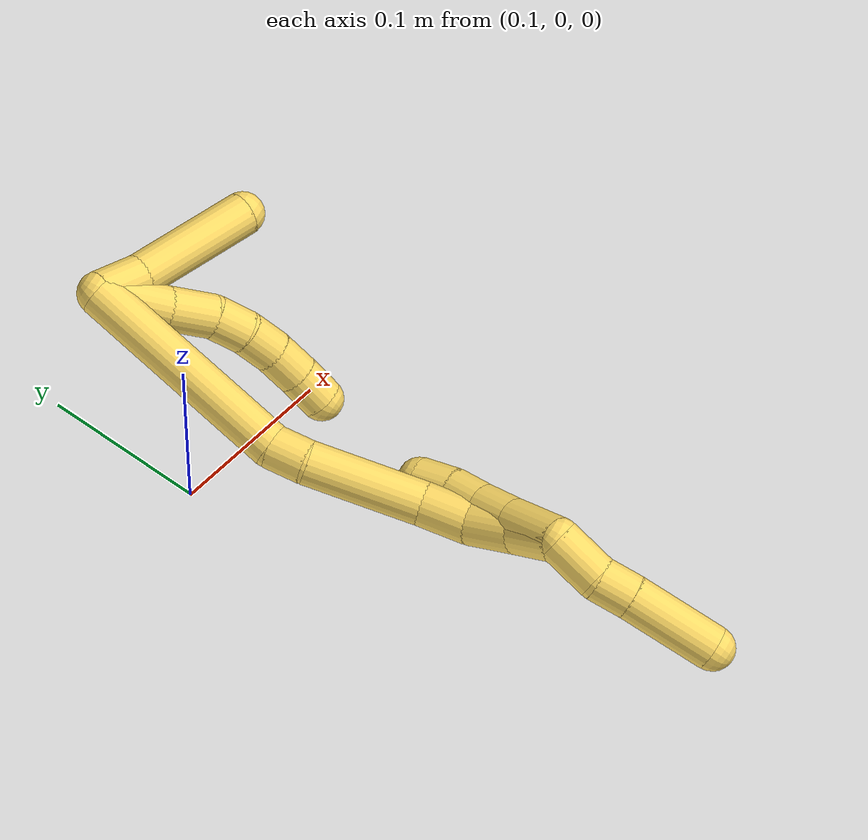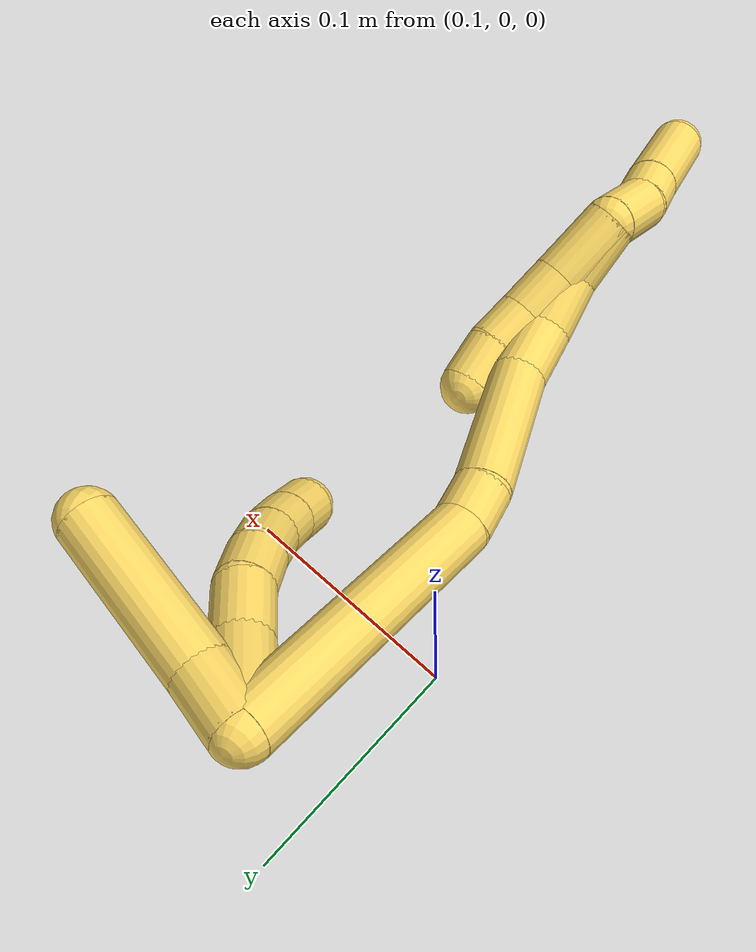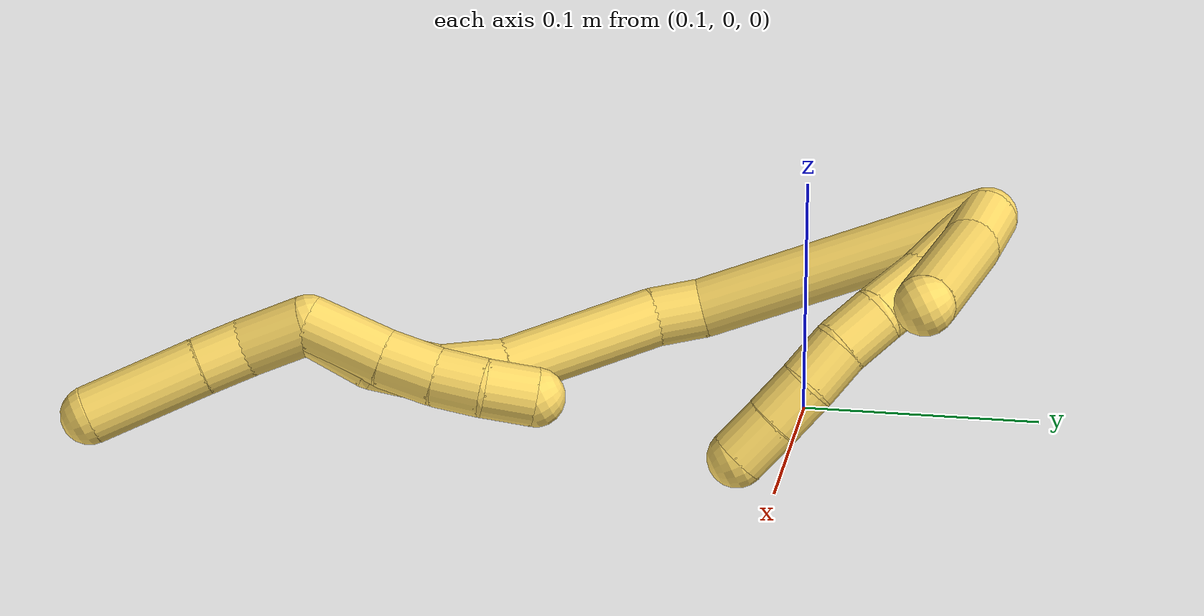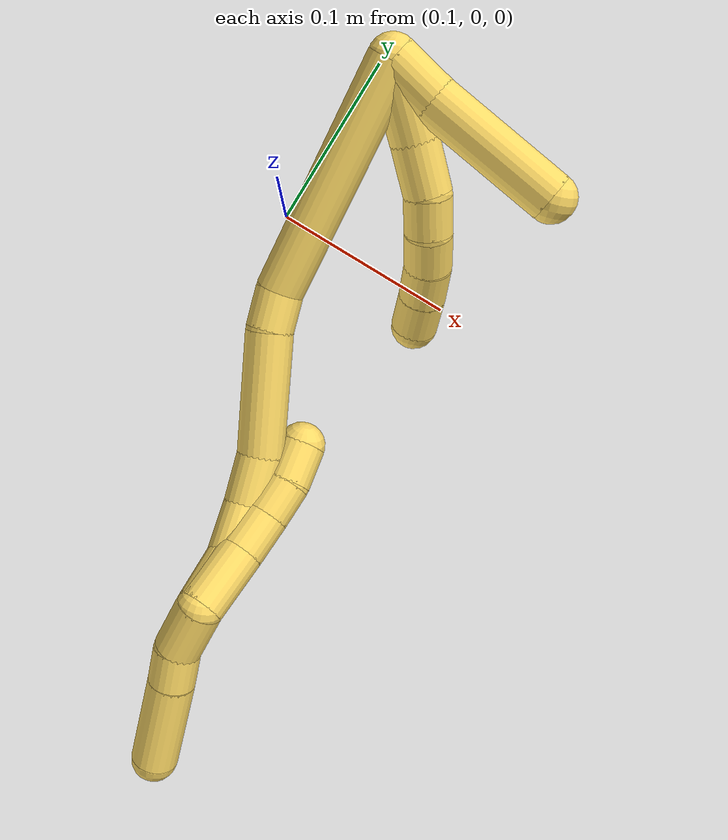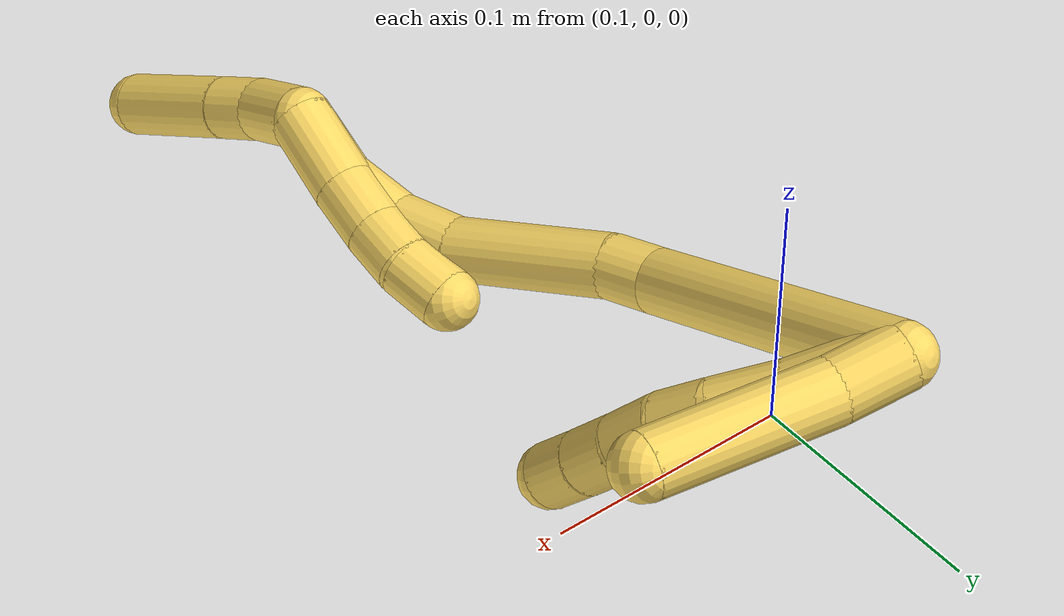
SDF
<sdf version="1.7">
 <world name="default">
  <model name="5">
   <static>0</static>
   <link name="5">
    <collision name="collision-cylinder-e_1_2_8">
     <pose>0.009602 -0.003591 -0.017374 2.93779 0.496084 2.37411</pose>
     <geometry><cylinder><radius>0.0125</radius><length>0.040346</length></cylinder></geometry>
     <surface>
      <friction><ode><mu>1.16</mu><mu2>1.16</mu2><slip1>0</slip1><slip2>0</slip2></ode></friction>
      <contact><ode><kp>1e+06</kp><kd>1</kd><max_vel>0</max_vel><min_depth>0.001</min_depth></ode></contact>
     </surface>
    </collision>
    <visual name="visual-cylinder-e_1_2_8">
     <pose>0.009602 -0.003591 -0.017374 2.93779 0.496084 2.37411</pose>
     <geometry><cylinder><radius>0.0125</radius><length>0.040346</length></cylinder></geometry>
     <material><ambient>1 0.858824 0.4 1</ambient></material>
    </visual>
    <collision name="collision-cylinder-e_2_8_9">
     <pose>0.024985 -0.01061 -0.046704 2.86233 0.435087 2.00889</pose>
     <geometry><cylinder><radius>0.0125</radius><length>0.027432</length></cylinder></geometry>
     <surface>
      <friction><ode><mu>1.16</mu><mu2>1.16</mu2><slip1>0</slip1><slip2>0</slip2></ode></friction>
      <contact><ode><kp>1e+06</kp><kd>1</kd><max_vel>0</max_vel><min_depth>0.001</min_depth></ode></contact>
     </surface>
    </collision>
    <visual name="visual-cylinder-e_2_8_9">
     <pose>0.024985 -0.01061 -0.046704 2.86233 0.435087 2.00889</pose>
     <geometry><cylinder><radius>0.0125</radius><length>0.027432</length></cylinder></geometry>
     <material><ambient>1 0.858824 0.4 1</ambient></material>
    </visual>
    <collision name="collision-cylinder-e_3_9_10">
     <pose>0.03398 -0.014293 -0.068439 3.11558 0.317435 2.9794</pose>
     <geometry><cylinder><radius>0.0125</radius><length>0.020593</length></cylinder></geometry>
     <surface>
      <friction><ode><mu>1.16</mu><mu2>1.16</mu2><slip1>0</slip1><slip2>0</slip2></ode></friction>
      <contact><ode><kp>1e+06</kp><kd>1</kd><max_vel>0</max_vel><min_depth>0.001</min_depth></ode></contact>
     </surface>
    </collision>
    <visual name="visual-cylinder-e_3_9_10">
     <pose>0.03398 -0.014293 -0.068439 3.11558 0.317435 2.9794</pose>
     <geometry><cylinder><radius>0.0125</radius><length>0.020593</length></cylinder></geometry>
     <material><ambient>1 0.858824 0.4 1</ambient></material>
    </visual>
    <collision name="collision-cylinder-e_4_10_11">
     <pose>0.040915 -0.012906 -0.087707 -2.97029 0.36868 -2.27853</pose>
     <geometry><cylinder><radius>0.0125</radius><length>0.020648</length></cylinder></geometry>
     <surface>
      <friction><ode><mu>1.16</mu><mu2>1.16</mu2><slip1>0</slip1><slip2>0</slip2></ode></friction>
      <contact><ode><kp>1e+06</kp><kd>1</kd><max_vel>0</max_vel><min_depth>0.001</min_depth></ode></contact>
     </surface>
    </collision>
    <visual name="visual-cylinder-e_4_10_11">
     <pose>0.040915 -0.012906 -0.087707 -2.97029 0.36868 -2.27853</pose>
     <geometry><cylinder><radius>0.0125</radius><length>0.020648</length></cylinder></geometry>
     <material><ambient>1 0.858824 0.4 1</ambient></material>
    </visual>
    <collision name="collision-cylinder-e_5_11_12">
     <pose>0.047164 -0.00883 -0.106678 -2.89026 0.252819 -1.57674</pose>
     <geometry><cylinder><radius>0.0125</radius><length>0.020221</length></cylinder></geometry>
     <surface>
      <friction><ode><mu>1.16</mu><mu2>1.16</mu2><slip1>0</slip1><slip2>0</slip2></ode></friction>
      <contact><ode><kp>1e+06</kp><kd>1</kd><max_vel>0</max_vel><min_depth>0.001</min_depth></ode></contact>
     </surface>
    </collision>
    <visual name="visual-cylinder-e_5_11_12">
     <pose>0.047164 -0.00883 -0.106678 -2.89026 0.252819 -1.57674</pose>
     <geometry><cylinder><radius>0.0125</radius><length>0.020221</length></cylinder></geometry>
     <material><ambient>1 0.858824 0.4 1</ambient></material>
    </visual>
    <collision name="collision-cylinder-e_6_12_6">
     <pose>0.051788 -0.003608 -0.125936 -2.86383 0.203243 -1.26052</pose>
     <geometry><cylinder><radius>0.0125</radius><length>0.020761</length></cylinder></geometry>
     <surface>
      <friction><ode><mu>1.16</mu><mu2>1.16</mu2><slip1>0</slip1><slip2>0</slip2></ode></friction>
      <contact><ode><kp>1e+06</kp><kd>1</kd><max_vel>0</max_vel><min_depth>0.001</min_depth></ode></contact>
     </surface>
    </collision>
    <visual name="visual-cylinder-e_6_12_6">
     <pose>0.051788 -0.003608 -0.125936 -2.86383 0.203243 -1.26052</pose>
     <geometry><cylinder><radius>0.0125</radius><length>0.020761</length></cylinder></geometry>
     <material><ambient>1 0.858824 0.4 1</ambient></material>
    </visual>
    <collision name="collision-cylinder-e_1_2_13">
     <pose>0.010028 -0.006651 -0.006435 2.33969 0.825461 1.6032</pose>
     <geometry><cylinder><radius>0.0125</radius><length>0.027293</length></cylinder></geometry>
     <surface>
      <friction><ode><mu>1.16</mu><mu2>1.16</mu2><slip1>0</slip1><slip2>0</slip2></ode></friction>
      <contact><ode><kp>1e+06</kp><kd>1</kd><max_vel>0</max_vel><min_depth>0.001</min_depth></ode></contact>
     </surface>
    </collision>
    <visual name="visual-cylinder-e_1_2_13">
     <pose>0.010028 -0.006651 -0.006435 2.33969 0.825461 1.6032</pose>
     <geometry><cylinder><radius>0.0125</radius><length>0.027293</length></cylinder></geometry>
     <material><ambient>1 0.858824 0.4 1</ambient></material>
    </visual>
    <collision name="collision-cylinder-e_2_13_5">
     <pose>0.044995 -0.035874 -0.026663 2.11932 0.755976 1.23215</pose>
     <geometry><cylinder><radius>0.0125</radius><length>0.072707</length></cylinder></geometry>
     <surface>
      <friction><ode><mu>1.16</mu><mu2>1.16</mu2><slip1>0</slip1><slip2>0</slip2></ode></friction>
      <contact><ode><kp>1e+06</kp><kd>1</kd><max_vel>0</max_vel><min_depth>0.001</min_depth></ode></contact>
     </surface>
    </collision>
    <visual name="visual-cylinder-e_2_13_5">
     <pose>0.044995 -0.035874 -0.026663 2.11932 0.755976 1.23215</pose>
     <geometry><cylinder><radius>0.0125</radius><length>0.072707</length></cylinder></geometry>
     <material><ambient>1 0.858824 0.4 1</ambient></material>
    </visual>
    <collision name="collision-cylinder-e_1_2_14">
     <pose>-0.013696 0.002205 -0.061304 -3.10564 -0.219658 2.81838</pose>
     <geometry><cylinder><radius>0.0125</radius><length>0.125708</length></cylinder></geometry>
     <surface>
      <friction><ode><mu>1.16</mu><mu2>1.16</mu2><slip1>0</slip1><slip2>0</slip2></ode></friction>
      <contact><ode><kp>1e+06</kp><kd>1</kd><max_vel>0</max_vel><min_depth>0.001</min_depth></ode></contact>
     </surface>
    </collision>
    <visual name="visual-cylinder-e_1_2_14">
     <pose>-0.013696 0.002205 -0.061304 -3.10564 -0.219658 2.81838</pose>
     <geometry><cylinder><radius>0.0125</radius><length>0.125708</length></cylinder></geometry>
     <material><ambient>1 0.858824 0.4 1</ambient></material>
    </visual>
    <collision name="collision-cylinder-e_2_14_15">
     <pose>-0.02894 0.001795 -0.132608 2.88583 -0.148711 -1.05017</pose>
     <geometry><cylinder><radius>0.0125</radius><length>0.020903</length></cylinder></geometry>
     <surface>
      <friction><ode><mu>1.16</mu><mu2>1.16</mu2><slip1>0</slip1><slip2>0</slip2></ode></friction>
      <contact><ode><kp>1e+06</kp><kd>1</kd><max_vel>0</max_vel><min_depth>0.001</min_depth></ode></contact>
     </surface>
    </collision>
    <visual name="visual-cylinder-e_2_14_15">
     <pose>-0.02894 0.001795 -0.132608 2.88583 -0.148711 -1.05017</pose>
     <geometry><cylinder><radius>0.0125</radius><length>0.020903</length></cylinder></geometry>
     <material><ambient>1 0.858824 0.4 1</ambient></material>
    </visual>
    <collision name="collision-cylinder-e_3_15_16">
     <pose>-0.02899 -0.009535 -0.174544 2.87517 0.04522 0.334364</pose>
     <geometry><cylinder><radius>0.0125</radius><length>0.066276</length></cylinder></geometry>
     <surface>
      <friction><ode><mu>1.16</mu><mu2>1.16</mu2><slip1>0</slip1><slip2>0</slip2></ode></friction>
      <contact><ode><kp>1e+06</kp><kd>1</kd><max_vel>0</max_vel><min_depth>0.001</min_depth></ode></contact>
     </surface>
    </collision>
    <visual name="visual-cylinder-e_3_15_16">
     <pose>-0.02899 -0.009535 -0.174544 2.87517 0.04522 0.334364</pose>
     <geometry><cylinder><radius>0.0125</radius><length>0.066276</length></cylinder></geometry>
     <material><ambient>1 0.858824 0.4 1</ambient></material>
    </visual>
    <collision name="collision-cylinder-e_4_16_17">
     <pose>-0.0303 -0.022914 -0.219632 2.80091 -0.198543 -1.04971</pose>
     <geometry><cylinder><radius>0.0125</radius><length>0.028467</length></cylinder></geometry>
     <surface>
      <friction><ode><mu>1.16</mu><mu2>1.16</mu2><slip1>0</slip1><slip2>0</slip2></ode></friction>
      <contact><ode><kp>1e+06</kp><kd>1</kd><max_vel>0</max_vel><min_depth>0.001</min_depth></ode></contact>
     </surface>
    </collision>
    <visual name="visual-cylinder-e_4_16_17">
     <pose>-0.0303 -0.022914 -0.219632 2.80091 -0.198543 -1.04971</pose>
     <geometry><cylinder><radius>0.0125</radius><length>0.028467</length></cylinder></geometry>
     <material><ambient>1 0.858824 0.4 1</ambient></material>
    </visual>
    <collision name="collision-cylinder-e_5_17_18">
     <pose>-0.038268 -0.035271 -0.243457 2.51687 -0.373814 -1.05955</pose>
     <geometry><cylinder><radius>0.0125</radius><length>0.028267</length></cylinder></geometry>
     <surface>
      <friction><ode><mu>1.16</mu><mu2>1.16</mu2><slip1>0</slip1><slip2>0</slip2></ode></friction>
      <contact><ode><kp>1e+06</kp><kd>1</kd><max_vel>0</max_vel><min_depth>0.001</min_depth></ode></contact>
     </surface>
    </collision>
    <visual name="visual-cylinder-e_5_17_18">
     <pose>-0.038268 -0.035271 -0.243457 2.51687 -0.373814 -1.05955</pose>
     <geometry><cylinder><radius>0.0125</radius><length>0.028267</length></cylinder></geometry>
     <material><ambient>1 0.858824 0.4 1</ambient></material>
    </visual>
    <collision name="collision-cylinder-e_6_18_1">
     <pose>-0.052671 -0.051478 -0.262666 2.35771 -0.654021 -1.37438</pose>
     <geometry><cylinder><radius>0.0125</radius><length>0.030379</length></cylinder></geometry>
     <surface>
      <friction><ode><mu>1.16</mu><mu2>1.16</mu2><slip1>0</slip1><slip2>0</slip2></ode></friction>
      <contact><ode><kp>1e+06</kp><kd>1</kd><max_vel>0</max_vel><min_depth>0.001</min_depth></ode></contact>
     </surface>
    </collision>
    <visual name="visual-cylinder-e_6_18_1">
     <pose>-0.052671 -0.051478 -0.262666 2.35771 -0.654021 -1.37438</pose>
     <geometry><cylinder><radius>0.0125</radius><length>0.030379</length></cylinder></geometry>
     <material><ambient>1 0.858824 0.4 1</ambient></material>
    </visual>
    <collision name="collision-cylinder-e_1_1_19">
     <pose>-0.050749 -0.052564 -0.260154 -0.591691 0.697782 -0.220846</pose>
     <geometry><cylinder><radius>0.0125</radius><length>0.034745</length></cylinder></geometry>
     <surface>
      <friction><ode><mu>1.16</mu><mu2>1.16</mu2><slip1>0</slip1><slip2>0</slip2></ode></friction>
      <contact><ode><kp>1e+06</kp><kd>1</kd><max_vel>0</max_vel><min_depth>0.001</min_depth></ode></contact>
     </surface>
    </collision>
    <visual name="visual-cylinder-e_1_1_19">
     <pose>-0.050749 -0.052564 -0.260154 -0.591691 0.697782 -0.220846</pose>
     <geometry><cylinder><radius>0.0125</radius><length>0.034745</length></cylinder></geometry>
     <material><ambient>1 0.858824 0.4 1</ambient></material>
    </visual>
    <collision name="collision-cylinder-e_2_19_20">
     <pose>-0.032581 -0.040634 -0.241058 -0.510408 0.64965 -0.175262</pose>
     <geometry><cylinder><radius>0.0125</radius><length>0.023164</length></cylinder></geometry>
     <surface>
      <friction><ode><mu>1.16</mu><mu2>1.16</mu2><slip1>0</slip1><slip2>0</slip2></ode></friction>
      <contact><ode><kp>1e+06</kp><kd>1</kd><max_vel>0</max_vel><min_depth>0.001</min_depth></ode></contact>
     </surface>
    </collision>
    <visual name="visual-cylinder-e_2_19_20">
     <pose>-0.032581 -0.040634 -0.241058 -0.510408 0.64965 -0.175262</pose>
     <geometry><cylinder><radius>0.0125</radius><length>0.023164</length></cylinder></geometry>
     <material><ambient>1 0.858824 0.4 1</ambient></material>
    </visual>
    <collision name="collision-cylinder-e_3_20_21">
     <pose>-0.019993 -0.032786 -0.225108 -0.400072 0.576781 -0.12015</pose>
     <geometry><cylinder><radius>0.0125</radius><length>0.020472</length></cylinder></geometry>
     <surface>
      <friction><ode><mu>1.16</mu><mu2>1.16</mu2><slip1>0</slip1><slip2>0</slip2></ode></friction>
      <contact><ode><kp>1e+06</kp><kd>1</kd><max_vel>0</max_vel><min_depth>0.001</min_depth></ode></contact>
     </surface>
    </collision>
    <visual name="visual-cylinder-e_3_20_21">
     <pose>-0.019993 -0.032786 -0.225108 -0.400072 0.576781 -0.12015</pose>
     <geometry><cylinder><radius>0.0125</radius><length>0.020472</length></cylinder></geometry>
     <material><ambient>1 0.858824 0.4 1</ambient></material>
    </visual>
    <collision name="collision-cylinder-e_4_21_4">
     <pose>-0.010082 -0.024581 -0.208577 -0.51327 0.412008 -0.109566</pose>
     <geometry><cylinder><radius>0.0125</radius><length>0.021619</length></cylinder></geometry>
     <surface>
      <friction><ode><mu>1.16</mu><mu2>1.16</mu2><slip1>0</slip1><slip2>0</slip2></ode></friction>
      <contact><ode><kp>1e+06</kp><kd>1</kd><max_vel>0</max_vel><min_depth>0.001</min_depth></ode></contact>
     </surface>
    </collision>
    <visual name="visual-cylinder-e_4_21_4">
     <pose>-0.010082 -0.024581 -0.208577 -0.51327 0.412008 -0.109566</pose>
     <geometry><cylinder><radius>0.0125</radius><length>0.021619</length></cylinder></geometry>
     <material><ambient>1 0.858824 0.4 1</ambient></material>
    </visual>
    <collision name="collision-cylinder-e_1_1_22">
     <pose>-0.064873 -0.058712 -0.285275 -3.05104 -0.206637 2.31771</pose>
     <geometry><cylinder><radius>0.0125</radius><length>0.028873</length></cylinder></geometry>
     <surface>
      <friction><ode><mu>1.16</mu><mu2>1.16</mu2><slip1>0</slip1><slip2>0</slip2></ode></friction>
      <contact><ode><kp>1e+06</kp><kd>1</kd><max_vel>0</max_vel><min_depth>0.001</min_depth></ode></contact>
     </surface>
    </collision>
    <visual name="visual-cylinder-e_1_1_22">
     <pose>-0.064873 -0.058712 -0.285275 -3.05104 -0.206637 2.31771</pose>
     <geometry><cylinder><radius>0.0125</radius><length>0.028873</length></cylinder></geometry>
     <material><ambient>1 0.858824 0.4 1</ambient></material>
    </visual>
    <collision name="collision-cylinder-e_2_22_23">
     <pose>-0.067899 -0.058476 -0.309418 3.03849 -0.006305 -0.122043</pose>
     <geometry><cylinder><radius>0.0125</radius><length>0.020251</length></cylinder></geometry>
     <surface>
      <friction><ode><mu>1.16</mu><mu2>1.16</mu2><slip1>0</slip1><slip2>0</slip2></ode></friction>
      <contact><ode><kp>1e+06</kp><kd>1</kd><max_vel>0</max_vel><min_depth>0.001</min_depth></ode></contact>
     </surface>
    </collision>
    <visual name="visual-cylinder-e_2_22_23">
     <pose>-0.067899 -0.058476 -0.309418 3.03849 -0.006305 -0.122043</pose>
     <geometry><cylinder><radius>0.0125</radius><length>0.020251</length></cylinder></geometry>
     <material><ambient>1 0.858824 0.4 1</ambient></material>
    </visual>
    <collision name="collision-cylinder-e_3_23_3">
     <pose>-0.068482 -0.060959 -0.344881 3.08491 -0.020388 -0.690347</pose>
     <geometry><cylinder><radius>0.0125</radius><length>0.050875</length></cylinder></geometry>
     <surface>
      <friction><ode><mu>1.16</mu><mu2>1.16</mu2><slip1>0</slip1><slip2>0</slip2></ode></friction>
      <contact><ode><kp>1e+06</kp><kd>1</kd><max_vel>0</max_vel><min_depth>0.001</min_depth></ode></contact>
     </surface>
    </collision>
    <visual name="visual-cylinder-e_3_23_3">
     <pose>-0.068482 -0.060959 -0.344881 3.08491 -0.020388 -0.690347</pose>
     <geometry><cylinder><radius>0.0125</radius><length>0.050875</length></cylinder></geometry>
     <material><ambient>1 0.858824 0.4 1</ambient></material>
    </visual>
    <collision name="collision-sphere-3">
     <pose>-0.069 -0.0624 -0.370273 0 -0 0</pose>
     <geometry><sphere><radius>0.0125</radius></sphere></geometry>
     <surface>
      <friction><ode><mu>1.16</mu><mu2>1.16</mu2><slip1>0</slip1><slip2>0</slip2></ode></friction>
      <contact><ode><kp>1e+06</kp><kd>1</kd><max_vel>0</max_vel><min_depth>0.001</min_depth></ode></contact>
     </surface>
    </collision>
    <visual name="visual-sphere-3">
     <pose>-0.069 -0.0624 -0.370273 0 -0 0</pose>
     <geometry><sphere><radius>0.0125</radius></sphere></geometry>
     <material><ambient>1 0.858824 0.4 1</ambient></material>
    </visual>
    <collision name="collision-sphere-23">
     <pose>-0.067963 -0.059518 -0.31949 0 -0 0</pose>
     <geometry><sphere><radius>0.0125</radius></sphere></geometry>
     <surface>
      <friction><ode><mu>1.16</mu><mu2>1.16</mu2><slip1>0</slip1><slip2>0</slip2></ode></friction>
      <contact><ode><kp>1e+06</kp><kd>1</kd><max_vel>0</max_vel><min_depth>0.001</min_depth></ode></contact>
     </surface>
    </collision>
    <visual name="visual-sphere-23">
     <pose>-0.067963 -0.059518 -0.31949 0 -0 0</pose>
     <geometry><sphere><radius>0.0125</radius></sphere></geometry>
     <material><ambient>1 0.858824 0.4 1</ambient></material>
    </visual>
    <collision name="collision-sphere-22">
     <pose>-0.067835 -0.057434 -0.299346 0 -0 0</pose>
     <geometry><sphere><radius>0.0125</radius></sphere></geometry>
     <surface>
      <friction><ode><mu>1.16</mu><mu2>1.16</mu2><slip1>0</slip1><slip2>0</slip2></ode></friction>
      <contact><ode><kp>1e+06</kp><kd>1</kd><max_vel>0</max_vel><min_depth>0.001</min_depth></ode></contact>
     </surface>
    </collision>
    <visual name="visual-sphere-22">
     <pose>-0.067835 -0.057434 -0.299346 0 -0 0</pose>
     <geometry><sphere><radius>0.0125</radius></sphere></geometry>
     <material><ambient>1 0.858824 0.4 1</ambient></material>
    </visual>
    <collision name="collision-sphere-4">
     <pose>-0.005754 -0.019717 -0.199949 0 -0 0</pose>
     <geometry><sphere><radius>0.0125</radius></sphere></geometry>
     <surface>
      <friction><ode><mu>1.16</mu><mu2>1.16</mu2><slip1>0</slip1><slip2>0</slip2></ode></friction>
      <contact><ode><kp>1e+06</kp><kd>1</kd><max_vel>0</max_vel><min_depth>0.001</min_depth></ode></contact>
     </surface>
    </collision>
    <visual name="visual-sphere-4">
     <pose>-0.005754 -0.019717 -0.199949 0 -0 0</pose>
     <geometry><sphere><radius>0.0125</radius></sphere></geometry>
     <material><ambient>1 0.858824 0.4 1</ambient></material>
    </visual>
    <collision name="collision-sphere-21">
     <pose>-0.014411 -0.029445 -0.217206 0 -0 0</pose>
     <geometry><sphere><radius>0.0125</radius></sphere></geometry>
     <surface>
      <friction><ode><mu>1.16</mu><mu2>1.16</mu2><slip1>0</slip1><slip2>0</slip2></ode></friction>
      <contact><ode><kp>1e+06</kp><kd>1</kd><max_vel>0</max_vel><min_depth>0.001</min_depth></ode></contact>
     </surface>
    </collision>
    <visual name="visual-sphere-21">
     <pose>-0.014411 -0.029445 -0.217206 0 -0 0</pose>
     <geometry><sphere><radius>0.0125</radius></sphere></geometry>
     <material><ambient>1 0.858824 0.4 1</ambient></material>
    </visual>
    <collision name="collision-sphere-20">
     <pose>-0.025575 -0.036128 -0.23301 0 -0 0</pose>
     <geometry><sphere><radius>0.0125</radius></sphere></geometry>
     <surface>
      <friction><ode><mu>1.16</mu><mu2>1.16</mu2><slip1>0</slip1><slip2>0</slip2></ode></friction>
      <contact><ode><kp>1e+06</kp><kd>1</kd><max_vel>0</max_vel><min_depth>0.001</min_depth></ode></contact>
     </surface>
    </collision>
    <visual name="visual-sphere-20">
     <pose>-0.025575 -0.036128 -0.23301 0 -0 0</pose>
     <geometry><sphere><radius>0.0125</radius></sphere></geometry>
     <material><ambient>1 0.858824 0.4 1</ambient></material>
    </visual>
    <collision name="collision-sphere-12">
     <pose>0.049693 -0.006395 -0.116159 0 -0 0</pose>
     <geometry><sphere><radius>0.0125</radius></sphere></geometry>
     <surface>
      <friction><ode><mu>1.16</mu><mu2>1.16</mu2><slip1>0</slip1><slip2>0</slip2></ode></friction>
      <contact><ode><kp>1e+06</kp><kd>1</kd><max_vel>0</max_vel><min_depth>0.001</min_depth></ode></contact>
     </surface>
    </collision>
    <visual name="visual-sphere-12">
     <pose>0.049693 -0.006395 -0.116159 0 -0 0</pose>
     <geometry><sphere><radius>0.0125</radius></sphere></geometry>
     <material><ambient>1 0.858824 0.4 1</ambient></material>
    </visual>
    <collision name="collision-sphere-11">
     <pose>0.044635 -0.011264 -0.097197 0 -0 0</pose>
     <geometry><sphere><radius>0.0125</radius></sphere></geometry>
     <surface>
      <friction><ode><mu>1.16</mu><mu2>1.16</mu2><slip1>0</slip1><slip2>0</slip2></ode></friction>
      <contact><ode><kp>1e+06</kp><kd>1</kd><max_vel>0</max_vel><min_depth>0.001</min_depth></ode></contact>
     </surface>
    </collision>
    <visual name="visual-sphere-11">
     <pose>0.044635 -0.011264 -0.097197 0 -0 0</pose>
     <geometry><sphere><radius>0.0125</radius></sphere></geometry>
     <material><ambient>1 0.858824 0.4 1</ambient></material>
    </visual>
    <collision name="collision-sphere-10">
     <pose>0.037194 -0.014547 -0.078218 0 -0 0</pose>
     <geometry><sphere><radius>0.0125</radius></sphere></geometry>
     <surface>
      <friction><ode><mu>1.16</mu><mu2>1.16</mu2><slip1>0</slip1><slip2>0</slip2></ode></friction>
      <contact><ode><kp>1e+06</kp><kd>1</kd><max_vel>0</max_vel><min_depth>0.001</min_depth></ode></contact>
     </surface>
    </collision>
    <visual name="visual-sphere-10">
     <pose>0.037194 -0.014547 -0.078218 0 -0 0</pose>
     <geometry><sphere><radius>0.0125</radius></sphere></geometry>
     <material><ambient>1 0.858824 0.4 1</ambient></material>
    </visual>
    <collision name="collision-sphere-9">
     <pose>0.030766 -0.014038 -0.058661 0 -0 0</pose>
     <geometry><sphere><radius>0.0125</radius></sphere></geometry>
     <surface>
      <friction><ode><mu>1.16</mu><mu2>1.16</mu2><slip1>0</slip1><slip2>0</slip2></ode></friction>
      <contact><ode><kp>1e+06</kp><kd>1</kd><max_vel>0</max_vel><min_depth>0.001</min_depth></ode></contact>
     </surface>
    </collision>
    <visual name="visual-sphere-9">
     <pose>0.030766 -0.014038 -0.058661 0 -0 0</pose>
     <geometry><sphere><radius>0.0125</radius></sphere></geometry>
     <material><ambient>1 0.858824 0.4 1</ambient></material>
    </visual>
    <collision name="collision-sphere-2">
     <geometry><sphere><radius>0.0125</radius></sphere></geometry>
     <surface>
      <friction><ode><mu>1.16</mu><mu2>1.16</mu2><slip1>0</slip1><slip2>0</slip2></ode></friction>
      <contact><ode><kp>1e+06</kp><kd>1</kd><max_vel>0</max_vel><min_depth>0.001</min_depth></ode></contact>
     </surface>
    </collision>
    <visual name="visual-sphere-2">
     <geometry><sphere><radius>0.0125</radius></sphere></geometry>
     <material><ambient>1 0.858824 0.4 1</ambient></material>
    </visual>
    <collision name="collision-sphere-19">
     <pose>-0.039587 -0.045139 -0.249105 0 -0 0</pose>
     <geometry><sphere><radius>0.0125</radius></sphere></geometry>
     <surface>
      <friction><ode><mu>1.16</mu><mu2>1.16</mu2><slip1>0</slip1><slip2>0</slip2></ode></friction>
      <contact><ode><kp>1e+06</kp><kd>1</kd><max_vel>0</max_vel><min_depth>0.001</min_depth></ode></contact>
     </surface>
    </collision>
    <visual name="visual-sphere-19">
     <pose>-0.039587 -0.045139 -0.249105 0 -0 0</pose>
     <geometry><sphere><radius>0.0125</radius></sphere></geometry>
     <material><ambient>1 0.858824 0.4 1</ambient></material>
    </visual>
    <collision name="collision-sphere-8">
     <pose>0.019204 -0.007181 -0.034748 0 -0 0</pose>
     <geometry><sphere><radius>0.0125</radius></sphere></geometry>
     <surface>
      <friction><ode><mu>1.16</mu><mu2>1.16</mu2><slip1>0</slip1><slip2>0</slip2></ode></friction>
      <contact><ode><kp>1e+06</kp><kd>1</kd><max_vel>0</max_vel><min_depth>0.001</min_depth></ode></contact>
     </surface>
    </collision>
    <visual name="visual-sphere-8">
     <pose>0.019204 -0.007181 -0.034748 0 -0 0</pose>
     <geometry><sphere><radius>0.0125</radius></sphere></geometry>
     <material><ambient>1 0.858824 0.4 1</ambient></material>
    </visual>
    <collision name="collision-sphere-6">
     <pose>0.053884 -0.00082 -0.135713 0 -0 0</pose>
     <geometry><sphere><radius>0.0125</radius></sphere></geometry>
     <surface>
      <friction><ode><mu>1.16</mu><mu2>1.16</mu2><slip1>0</slip1><slip2>0</slip2></ode></friction>
      <contact><ode><kp>1e+06</kp><kd>1</kd><max_vel>0</max_vel><min_depth>0.001</min_depth></ode></contact>
     </surface>
    </collision>
    <visual name="visual-sphere-6">
     <pose>0.053884 -0.00082 -0.135713 0 -0 0</pose>
     <geometry><sphere><radius>0.0125</radius></sphere></geometry>
     <material><ambient>1 0.858824 0.4 1</ambient></material>
    </visual>
    <collision name="collision-sphere-13">
     <pose>0.020056 -0.013303 -0.012871 0 -0 0</pose>
     <geometry><sphere><radius>0.0125</radius></sphere></geometry>
     <surface>
      <friction><ode><mu>1.16</mu><mu2>1.16</mu2><slip1>0</slip1><slip2>0</slip2></ode></friction>
      <contact><ode><kp>1e+06</kp><kd>1</kd><max_vel>0</max_vel><min_depth>0.001</min_depth></ode></contact>
     </surface>
    </collision>
    <visual name="visual-sphere-13">
     <pose>0.020056 -0.013303 -0.012871 0 -0 0</pose>
     <geometry><sphere><radius>0.0125</radius></sphere></geometry>
     <material><ambient>1 0.858824 0.4 1</ambient></material>
    </visual>
    <collision name="collision-sphere-5">
     <pose>0.069933 -0.058444 -0.040455 0 -0 0</pose>
     <geometry><sphere><radius>0.0125</radius></sphere></geometry>
     <surface>
      <friction><ode><mu>1.16</mu><mu2>1.16</mu2><slip1>0</slip1><slip2>0</slip2></ode></friction>
      <contact><ode><kp>1e+06</kp><kd>1</kd><max_vel>0</max_vel><min_depth>0.001</min_depth></ode></contact>
     </surface>
    </collision>
    <visual name="visual-sphere-5">
     <pose>0.069933 -0.058444 -0.040455 0 -0 0</pose>
     <geometry><sphere><radius>0.0125</radius></sphere></geometry>
     <material><ambient>1 0.858824 0.4 1</ambient></material>
    </visual>
    <collision name="collision-sphere-14">
     <pose>-0.027391 0.00441 -0.122608 0 -0 0</pose>
     <geometry><sphere><radius>0.0125</radius></sphere></geometry>
     <surface>
      <friction><ode><mu>1.16</mu><mu2>1.16</mu2><slip1>0</slip1><slip2>0</slip2></ode></friction>
      <contact><ode><kp>1e+06</kp><kd>1</kd><max_vel>0</max_vel><min_depth>0.001</min_depth></ode></contact>
     </surface>
    </collision>
    <visual name="visual-sphere-14">
     <pose>-0.027391 0.00441 -0.122608 0 -0 0</pose>
     <geometry><sphere><radius>0.0125</radius></sphere></geometry>
     <material><ambient>1 0.858824 0.4 1</ambient></material>
    </visual>
    <collision name="collision-sphere-15">
     <pose>-0.030488 -0.00082 -0.142608 0 -0 0</pose>
     <geometry><sphere><radius>0.0125</radius></sphere></geometry>
     <surface>
      <friction><ode><mu>1.16</mu><mu2>1.16</mu2><slip1>0</slip1><slip2>0</slip2></ode></friction>
      <contact><ode><kp>1e+06</kp><kd>1</kd><max_vel>0</max_vel><min_depth>0.001</min_depth></ode></contact>
     </surface>
    </collision>
    <visual name="visual-sphere-15">
     <pose>-0.030488 -0.00082 -0.142608 0 -0 0</pose>
     <geometry><sphere><radius>0.0125</radius></sphere></geometry>
     <material><ambient>1 0.858824 0.4 1</ambient></material>
    </visual>
    <collision name="collision-sphere-16">
     <pose>-0.027492 -0.018251 -0.20648 0 -0 0</pose>
     <geometry><sphere><radius>0.0125</radius></sphere></geometry>
     <surface>
      <friction><ode><mu>1.16</mu><mu2>1.16</mu2><slip1>0</slip1><slip2>0</slip2></ode></friction>
      <contact><ode><kp>1e+06</kp><kd>1</kd><max_vel>0</max_vel><min_depth>0.001</min_depth></ode></contact>
     </surface>
    </collision>
    <visual name="visual-sphere-16">
     <pose>-0.027492 -0.018251 -0.20648 0 -0 0</pose>
     <geometry><sphere><radius>0.0125</radius></sphere></geometry>
     <material><ambient>1 0.858824 0.4 1</ambient></material>
    </visual>
    <collision name="collision-sphere-17">
     <pose>-0.033107 -0.027576 -0.232784 0 -0 0</pose>
     <geometry><sphere><radius>0.0125</radius></sphere></geometry>
     <surface>
      <friction><ode><mu>1.16</mu><mu2>1.16</mu2><slip1>0</slip1><slip2>0</slip2></ode></friction>
      <contact><ode><kp>1e+06</kp><kd>1</kd><max_vel>0</max_vel><min_depth>0.001</min_depth></ode></contact>
     </surface>
    </collision>
    <visual name="visual-sphere-17">
     <pose>-0.033107 -0.027576 -0.232784 0 -0 0</pose>
     <geometry><sphere><radius>0.0125</radius></sphere></geometry>
     <material><ambient>1 0.858824 0.4 1</ambient></material>
    </visual>
    <collision name="collision-sphere-18">
     <pose>-0.043429 -0.042967 -0.254129 0 -0 0</pose>
     <geometry><sphere><radius>0.0125</radius></sphere></geometry>
     <surface>
      <friction><ode><mu>1.16</mu><mu2>1.16</mu2><slip1>0</slip1><slip2>0</slip2></ode></friction>
      <contact><ode><kp>1e+06</kp><kd>1</kd><max_vel>0</max_vel><min_depth>0.001</min_depth></ode></contact>
     </surface>
    </collision>
    <visual name="visual-sphere-18">
     <pose>-0.043429 -0.042967 -0.254129 0 -0 0</pose>
     <geometry><sphere><radius>0.0125</radius></sphere></geometry>
     <material><ambient>1 0.858824 0.4 1</ambient></material>
    </visual>
    <collision name="collision-sphere-1">
     <pose>-0.061912 -0.059989 -0.271203 0 -0 0</pose>
     <geometry><sphere><radius>0.0125</radius></sphere></geometry>
     <surface>
      <friction><ode><mu>1.16</mu><mu2>1.16</mu2><slip1>0</slip1><slip2>0</slip2></ode></friction>
      <contact><ode><kp>1e+06</kp><kd>1</kd><max_vel>0</max_vel><min_depth>0.001</min_depth></ode></contact>
     </surface>
    </collision>
    <visual name="visual-sphere-1">
     <pose>-0.061912 -0.059989 -0.271203 0 -0 0</pose>
     <geometry><sphere><radius>0.0125</radius></sphere></geometry>
     <material><ambient>1 0.858824 0.4 1</ambient></material>
    </visual>
    <inertial>
     <pose>-0.012638 -0.023362 -0.14805 0 -0 0</pose>
     <mass>0.75</mass>
     <inertia><ixx>-2.8e-05</ixx><ixy>0</ixy><ixz>0</ixz><iyy>0.000227</iyy><iyz>0</iyz><izz>-8e-06</izz></inertia>
    </inertial>
   </link>
   <pose>0.116518 0.076802 0.095337 -1.05392 0.479578 0.535034</pose>
  </model>
 </world>
</sdf>
